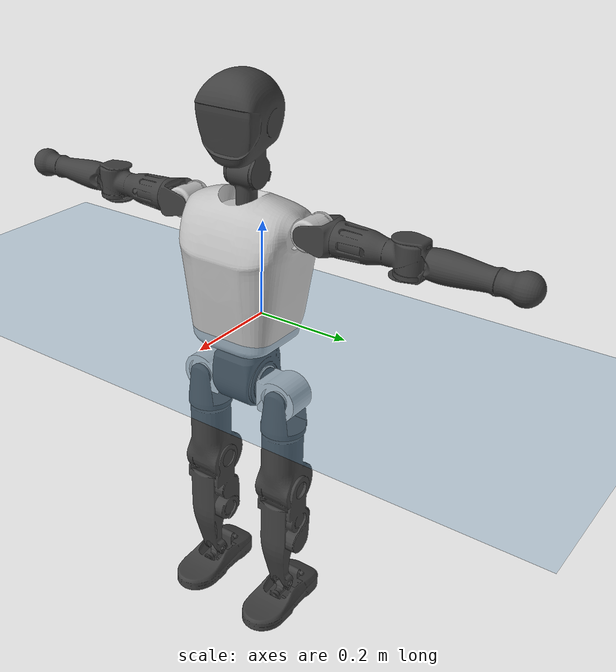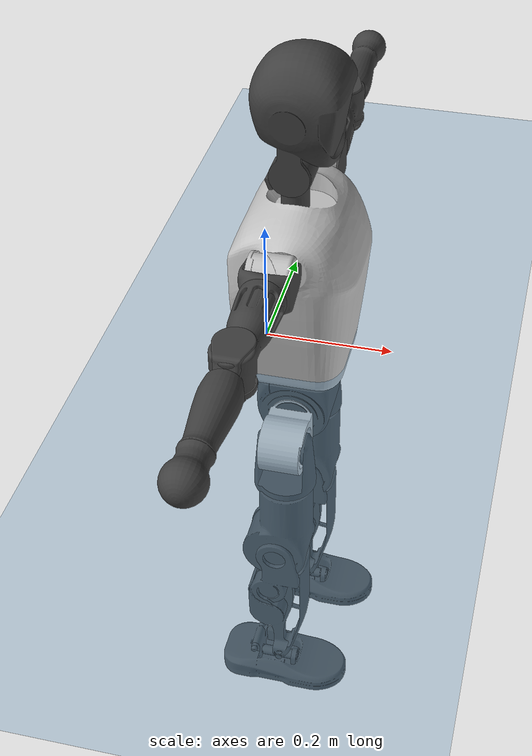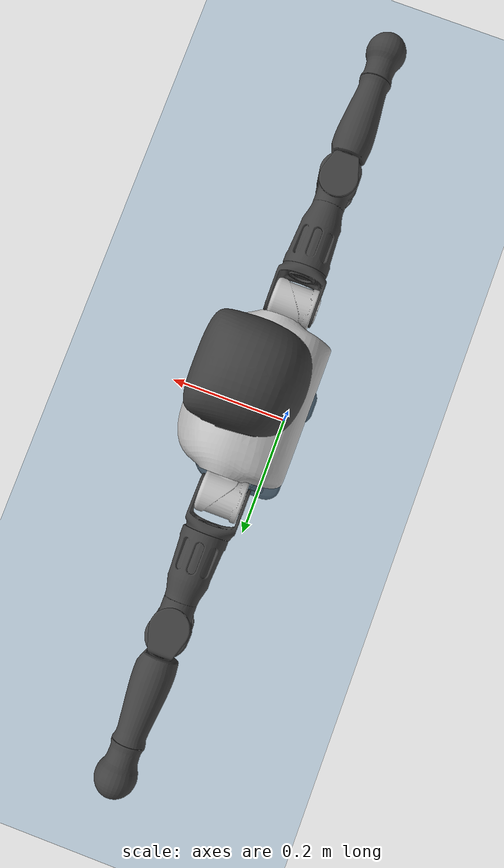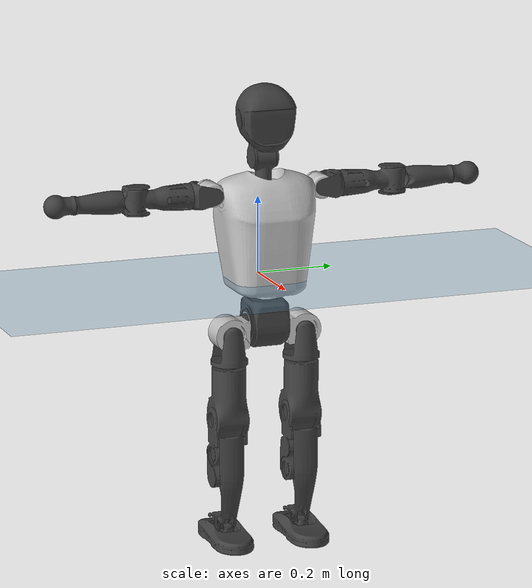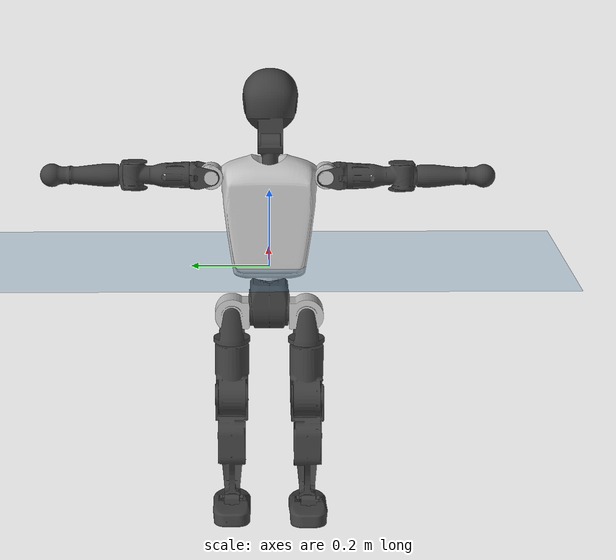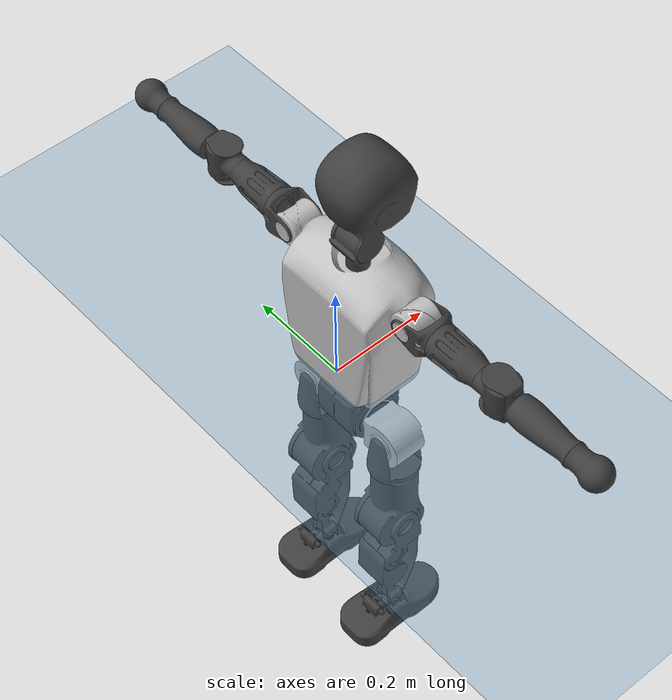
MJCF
<mujoco model="T1">
  <compiler angle="radian" assetdir="assets" balanceinertia="true" inertiafromgeom="false"/>

  <option timestep="0.005" density="1.2" viscosity="2e-05"/>

  <size nkey="1"/>

  <visual>
    <quality shadowsize="8192"/>
    <map shadowclip="0.5"/>
  </visual>

  <default>
    <default class="/">
      <joint armature="0.01" damping="0.01" frictionloss="0.1"/>
      <geom contype="0" conaffinity="0" group="1" solref="-1000 -80"/>
      <site size="0.01 0.005 0.005" group="5"/>
      <general forcelimited="true" biastype="affine" gainprm="25" biasprm="0 -25 -0.6"/>
      <default class="t1">
        <geom rgba="0.25 0.25 0.25 1"/>
        <default class="visual">
          <geom type="mesh" group="2"/>
        </default>
        <default class="collision">
          <geom group="3"/>
        </default>
        <default class="foot">
          <geom size="0.1115 0.05 0.015" type="box" condim="6" group="4" priority="1" solimp="0.015 1 0.015"/>
        </default>
        <default class="reward_collision_sphere">
          <geom group="5" rgba="1 0 0 1"/>
        </default>
      </default>
    </default>
  </default>

  <asset>
    <texture type="skybox" colorspace="auto" name="//unnamed_texture_0" builtin="gradient" rgb1="0.95 0.95 0.95" rgb2="0.95 0.95 0.95" width="100" height="600"/>
    <texture type="2d" colorspace="auto" name="texplane" builtin="checker" rgb1="0.345 0.575 0.748" rgb2="0.345 0.575 0.748" markrgb="1 1 1" width="512" height="512"/>
    <material name="MatPlane" class="/" texture="texplane" texuniform="true" texrepeat="2 2" specular="0.9"/>
    <mesh name="Trunk" class="/" file="Trunk.stl"/>
    <mesh name="H1" class="/" file="H1.stl"/>
    <mesh name="H2" class="/" file="H2.stl"/>
    <mesh name="AL1" class="/" file="AL1.stl"/>
    <mesh name="AL2" class="/" file="AL2.stl"/>
    <mesh name="AL3" class="/" file="AL3.stl"/>
    <mesh name="left_hand_link" class="/" file="left_hand_link.stl"/>
    <mesh name="AR1" class="/" file="AR1.stl"/>
    <mesh name="AR2" class="/" file="AR2.stl"/>
    <mesh name="AR3" class="/" file="AR3.stl"/>
    <mesh name="right_hand_link" class="/" file="right_hand_link.stl"/>
    <mesh name="Waist" class="/" file="Waist.stl"/>
    <mesh name="Hip_Pitch_Left" class="/" file="Hip_Pitch_Left.stl"/>
    <mesh name="Hip_Roll_Left" class="/" file="Hip_Roll_Left.stl"/>
    <mesh name="Hip_Yaw_Left" class="/" file="Hip_Yaw_Left.stl"/>
    <mesh name="Shank_Left" class="/" file="Shank_Left.stl"/>
    <mesh name="Ankle_Cross_Left" class="/" file="Ankle_Cross_Left.stl"/>
    <mesh name="left_foot_link" class="/" file="left_foot_link.stl"/>
    <mesh name="Hip_Pitch_Right" class="/" file="Hip_Pitch_Right.stl"/>
    <mesh name="Hip_Roll_Right" class="/" file="Hip_Roll_Right.stl"/>
    <mesh name="Hip_Yaw_Right" class="/" file="Hip_Yaw_Right.stl"/>
    <mesh name="Shank_Right" class="/" file="Shank_Right.stl"/>
    <mesh name="Ankle_Cross_Right" class="/" file="Ankle_Cross_Right.stl"/>
    <mesh name="right_foot_link" class="/" file="right_foot_link.stl"/>
  </asset>

  <worldbody>
    <geom name="floor" class="/" size="100 100 0.125" type="plane" group="0" material="MatPlane"/>
    <light name="toplight_shadow" class="/" pos="0 0 5" dir="0.0990148 0.0990148 -0.990148" type="directional" ambient="0.04 0.04 0.04" diffuse="0.55 0.55 0.55" specular="0.12 0.12 0.12"/>
    <light name="toplight_fill" class="/" pos="0 0 5" dir="0.0990148 0.0990148 -0.990148" type="directional" castshadow="false" ambient="0.04 0.04 0.04" diffuse="0.3 0.3 0.3" specular="0.08 0.08 0.08"/>
    <body name="trunk" childclass="t1" pos="0.000556855 -4.59595e-05 0.000101779" quat="1 -0.000227019 1.35549e-05 -5.6011e-05">
      <inertial pos="0.0438631 -0.000384956 0.10927" quat="0.999962 -0.00262223 -0.00729175 0.00405346" mass="9.39985" diaginertia="0.030775 0.0523406 0.0675193"/>
      <joint name="//unnamed_joint_0" type="free" armature="0" damping="0" frictionloss="0"/>
      <geom name="//unnamed_geom_1" class="visual" rgba="0.76 0.76 0.76 1" mesh="Trunk"/>
      <geom name="//unnamed_geom_2" class="collision" size="0.0690671 0.0920894 0.138134" pos="0.0480486 0 0.124322" type="box"/>
      <geom name="//unnamed_geom_3" class="reward_collision_sphere" size="0.105903" pos="0.0480486 0 0.103601"/>
      <geom name="//unnamed_geom_4" class="reward_collision_sphere" size="0.0138134" pos="0.0480486 0.0786979 0"/>
      <geom name="//unnamed_geom_5" class="reward_collision_sphere" size="0.0138134" pos="0.0480486 -0.0786979 0"/>
      <geom name="//unnamed_geom_6" class="reward_collision_sphere" size="0.0138134" pos="0.0480486 0.0990668 0.186482"/>
      <geom name="//unnamed_geom_7" class="reward_collision_sphere" size="0.0138134" pos="0.0480486 -0.0990668 0.186482"/>
      <site name="imu" pos="-0.0112714 0.00379101 0.00508553" size="0.00920894"/>
      <camera name="track" pos="0 -1.85172 0" quat="0.707107 0.707107 0 0" mode="trackcom"/>
      <camera name="ego_camera" pos="0.0976989 0 0.435126" quat="-0.5 -0.5 0.5 0.5"/>
      <body name="H1" pos="0.0470711 -0.00262488 0.249018" quat="1 0.000553815 7.35678e-05 0.000101891">
        <inertial pos="-0.00163304 -0.00145173 0.0600063" quat="0.765074 -0.0109803 0.0128282 0.643721" mass="0.353117" diaginertia="7.99377e-05 0.000147543 0.000179552"/>
        <joint name="AAHead_yaw" pos="0 0 0" axis="-0.00865438 -0.00688889 0.999939" range="-1.57961 1.55149" armature="0.0100123" damping="0.00891154" frictionloss="0.0914608"/>
        <geom name="//unnamed_geom_8" class="visual" mesh="H1"/>
        <body name="H2" pos="-0.00128869 -0.000153872 0.0643006" quat="1 -0.000352937 0.000208955 -0.000562004">
          <inertial pos="0.00608857 -0.00160073 0.102297" quat="0.988633 0.103432 -0.0739853 -0.0802015" mass="0.508403" diaginertia="0.000686402 0.00132241 0.00207548"/>
          <joint name="Head_pitch" pos="0 0 0" axis="0.000312616 -1 -0.000380947" range="-1.24143 0.351668" armature="0.009486" damping="0.0104903" frictionloss="0.0929729"/>
          <geom name="//unnamed_geom_9" class="visual" mesh="H2"/>
          <geom name="//unnamed_geom_10" class="collision" size="0.0736715" pos="0.00800811 0 0.113962"/>
          <geom name="//unnamed_geom_11" class="reward_collision_sphere" size="0.0828805" pos="0.0160162 0 0.103601"/>
        </body>
      </body>
      <body name="AL1" pos="0.046557 0.101457 0.227113" quat="1 -3.47571e-05 0.000537397 7.5172e-05">
        <inertial pos="-0.00293249 0.0437075 -0.00135014" quat="0.501237 0.494321 -0.506999 0.497353" mass="0.411045" diaginertia="0.000450408 0.000878127 0.000348417"/>
        <joint name="Left_Shoulder_Pitch" pos="0 0 0" axis="-0.000196729 0.999999 0.00141392" stiffness="0.00696273" range="-3.32003 1.22468" armature="0.00943856" damping="0.00517183" frictionloss="0.0886203"/>
        <geom name="//unnamed_geom_12" class="visual" rgba="0.76 0.76 0.76 1" mesh="AL1"/>
        <body name="AL2" pos="-0.000432059 0.046322 0.000562863" quat="1 5.04923e-05 -0.000314042 0.000293129">
          <inertial pos="0.00271985 0.0360624 -0.000528617" quat="0.488004 0.51169 -0.487963 0.511779" mass="0.126261" diaginertia="0.00013796 0.000248742 0.000215779"/>
          <joint name="Left_Shoulder_Roll" pos="0 0 0" axis="-0.999999 5.00804e-05 0.00163" range="-1.56088 1.70166" armature="0.00922058" damping="0.0186816" frictionloss="0.0908502"/>
          <geom name="//unnamed_geom_13" class="visual" mesh="AL2"/>
          <body name="AL3" pos="0.00299712 0.0561699 0.000795895" quat="1 -0.000146715 -0.000114554 -0.000170799">
            <inertial pos="-0.000279196 0.0781492 0.00120662" quat="0.705841 0.708335 -0.00709462 -0.000441405" mass="0.789238" diaginertia="0.00426849 0.00861406 0.000731836"/>
            <joint name="Left_Elbow_Pitch" pos="0 0 0" axis="-0.000242791 -1 -0.000135335" range="-2.28284 2.3008" armature="0.00838444" damping="0.00748657" frictionloss="0.0918987"/>
            <geom name="//unnamed_geom_14" class="visual" mesh="AL3"/>
            <geom name="//unnamed_geom_15" class="collision" size="0.0276268 0.0690671" pos="0 0.0462929 0" quat="0.707105 0.707108 0 0" type="cylinder"/>
            <geom name="//unnamed_geom_16" class="reward_collision_sphere" size="0.0331522"/>
            <body name="left_hand_link" pos="-0.000508112 0.13637 0.000145016" quat="1 5.29375e-06 -0.000206939 0.000599999">
              <inertial pos="0.00234593 0.0998807 0.000583573" quat="0.707394 0.706802 -0.00293951 -0.00405604" mass="0.25275" diaginertia="0.00266319 0.00551153 0.00024903"/>
              <joint name="Left_Elbow_Yaw" pos="0 0 0" axis="-0.00100518 -0.000480648 0.999999" range="-2.44998 -0.00264111" armature="0.00979424" damping="0.016446" frictionloss="0.0983702"/>
              <geom name="//unnamed_geom_17" class="visual" mesh="left_hand_link"/>
              <geom name="//unnamed_geom_18" class="collision" size="0.0276268 0.0805782" pos="0 0.120362 0" quat="0.707105 0.707108 0 0" type="cylinder"/>
              <geom name="//unnamed_geom_19" class="reward_collision_sphere" size="0.0460447"/>
              <geom name="//unnamed_geom_20" class="reward_collision_sphere" size="0.0322313" pos="0 0.101844 0"/>
              <geom name="//unnamed_geom_21" class="reward_collision_sphere" size="0.0322313" pos="0 0.199059 0"/>
            </body>
          </body>
        </body>
      </body>
      <body name="AR1" pos="0.0472072 -0.0994871 0.227202" quat="1 -8.00912e-05 0.000330212 3.77706e-05">
        <inertial pos="-0.00146759 -0.0427798 -0.000237631" quat="0.504259 0.495661 -0.504204 0.495804" mass="0.410809" diaginertia="0.000455203 0.000881272 0.000347088"/>
        <joint name="Right_Shoulder_Pitch" pos="0 0 0" axis="1.90336e-05 -1 4.00635e-05" stiffness="0.00848096" range="-1.2148 3.28846" armature="0.00949741" damping="0" frictionloss="0.0918441"/>
        <geom name="//unnamed_geom_22" class="visual" rgba="0.76 0.76 0.76 1" mesh="AR1"/>
        <body name="AR2" pos="0.000943396 -0.0434759 -0.00202467" quat="1 4.2576e-05 -4.26471e-05 2.57225e-05">
          <inertial pos="0.00294691 -0.0338842 -0.00199831" quat="0.510576 0.48749 -0.513691 0.487634" mass="0.125623" diaginertia="0.000132969 0.000229868 0.000210337"/>
          <joint name="Right_Shoulder_Roll" pos="0 0 0" axis="-0.999948 0.0101051 0.00158011" range="-1.69169 1.57207" armature="0.00894794" damping="0.0197631" frictionloss="0.0901282"/>
          <geom name="//unnamed_geom_23" class="visual" mesh="AR2"/>
          <body name="AR3" pos="0.00057604 -0.0558344 -0.000823463" quat="1 -9.81131e-05 -0.000160474 -0.000184363">
            <inertial pos="-0.00258609 -0.0800068 -6.06085e-05" quat="0.707869 0.706343 0.000203034 0.000954009" mass="0.795593" diaginertia="0.00426018 0.00867617 0.000761856"/>
            <joint name="Right_Elbow_Pitch" pos="0 0 0" axis="0.000445032 0.999998 -0.00188869" range="-2.27435 2.25793" armature="0.00927932" damping="0.0140889" frictionloss="0.0818984"/>
            <geom name="//unnamed_geom_24" class="visual" mesh="AR3"/>
            <geom name="//unnamed_geom_25" class="collision" size="0.0276268 0.0690671" pos="0 -0.0462929 0" quat="0.707105 0.707108 0 0" type="cylinder"/>
            <geom name="//unnamed_geom_26" class="reward_collision_sphere" size="0.0331522"/>
            <body name="right_hand_link" pos="-0.000541159 -0.135928 -0.000418863" quat="1 -2.59532e-05 -0.000238315 -0.000207689">
              <inertial pos="0.000487836 -0.100917 0.00274582" quat="0.706488 0.707725 -3.24166e-06 -0.000408566" mass="0.256232" diaginertia="0.00266208 0.00539597 0.000258637"/>
              <joint name="Right_Elbow_Yaw" pos="0 0 0" axis="-0.00127985 -0.000336568 0.999999" stiffness="0.000402892" range="0.000604151 2.4593" armature="0.00921182" damping="0.00966162" frictionloss="0.0826457"/>
              <geom name="//unnamed_geom_27" class="visual" mesh="right_hand_link"/>
              <geom name="//unnamed_geom_28" class="collision" size="0.0276268 0.0805782" pos="0 -0.120362 0" quat="0.707105 0.707108 0 0" type="cylinder"/>
              <geom name="//unnamed_geom_29" class="reward_collision_sphere" size="0.0460447"/>
              <geom name="//unnamed_geom_30" class="reward_collision_sphere" size="0.0322313" pos="0 -0.101844 0"/>
              <geom name="//unnamed_geom_31" class="reward_collision_sphere" size="0.0322313" pos="0 -0.199059 0"/>
            </body>
          </body>
        </body>
      </body>
      <body name="Waist" pos="0.0508451 8.91001e-05 -0.120541" quat="1 -0.000423238 7.79106e-05 -6.3886e-05">
        <inertial pos="0.00108211 -0.000495897 0.00728616" quat="0.983656 0.000449088 -0.180037 0.002656" mass="1.98599" diaginertia="0.00181539 0.00355766 0.00581377"/>
        <joint name="Waist" pos="0 0 0" axis="-0.00242342 -0.00674921 0.999974" range="-1.57508 1.5686" armature="0.00906835" damping="0.00887704" frictionloss="0.0827823"/>
        <geom name="//unnamed_geom_32" class="visual" mesh="Waist"/>
        <body name="Hip_Pitch_Left" pos="0.00165565 0.097251 0.000836235" quat="1 0.000653078 -0.000578772 -0.000113024">
          <inertial pos="0.000354312 -0.00855429 -0.0198023" quat="0.975442 0.219672 0.0158646 0.00212361" mass="0.793057" diaginertia="0.00058932 0.00100317 0.00152544"/>
          <joint name="Left_Hip_Pitch" pos="0 0 0" axis="-0.000332429 0.999998 -0.0017453" stiffness="3.88599e-05" range="-1.78084 1.57003" armature="0.00951639" damping="0.0184628" frictionloss="0.0924392"/>
          <geom name="//unnamed_geom_33" class="visual" rgba="0.76 0.76 0.76 1" mesh="Hip_Pitch_Left"/>
          <body name="Hip_Roll_Left" pos="0.00234728 0.000427407 -0.0208816" quat="0.999999 -0.00123017 0.000202361 0.00019256">
            <inertial pos="0.00172033 0.000855162 -0.0558637" quat="0.707418 -0.00479568 -0.00718573 0.706743" mass="0.286504" diaginertia="0.000539956 0.00100449 0.000593866"/>
            <joint name="Left_Hip_Roll" pos="0 0 0" axis="-0.99994 0.00226361 -0.0107053" range="-1.52243 0.196315" armature="0.00919117" damping="0.00583488" frictionloss="0.0959503"/>
            <geom name="//unnamed_geom_34" class="visual" mesh="Hip_Roll_Left"/>
            <geom name="//unnamed_geom_35" class="reward_collision_sphere" size="0.0506492"/>
            <body name="Hip_Yaw_Left" pos="0.000909996 -4.21809e-05 -0.0856988" quat="0.999999 0.000107483 0.000503809 0.00092462">
              <inertial pos="-0.00760592 0.00093572 -0.0915672" quat="0.698556 -0.0329797 -0.0276747 0.714259" mass="1.69199" diaginertia="0.00874892 0.0173404 0.00312823"/>
              <joint name="Left_Hip_Yaw" pos="0 0 0" axis="-0.00144264 0.000923338 -0.999999" range="-0.957619 1.04507" armature="0.00912421" damping="0.00830645" frictionloss="0.0991836"/>
              <geom name="//unnamed_geom_36" class="visual" mesh="Hip_Yaw_Left"/>
              <geom name="//unnamed_geom_37" class="collision" size="0.0460447 0.0736715" type="cylinder"/>
              <body name="Shank_Left" pos="-0.0110649 0.00155379 -0.138469" quat="1 -2.80965e-05 7.23108e-05 2.40077e-05">
                <inertial pos="-0.00715947 -0.000222657 -0.129906" quat="0.996716 0.00487913 -0.0303574 0.0749177" mass="1.3508" diaginertia="0.0114529 0.0242882 0.00224206"/>
                <joint name="Left_Knee_Pitch" pos="0 0 0" axis="-0.00179113 0.999985 -0.00513984" range="-0.00593034 2.36339" armature="0.00880487" damping="0.00806416" frictionloss="0.102661"/>
                <geom name="//unnamed_geom_38" class="visual" mesh="Shank_Left"/>
                <geom name="//unnamed_geom_39" class="collision" size="0.0460447 0.0690671" pos="0 0 -0.124322" type="cylinder"/>
                <geom name="//unnamed_geom_40" class="reward_collision_sphere" size="0.0598581"/>
                <body name="Ankle_Cross_Left" pos="0.00246436 0.00053438 -0.291297" quat="1 -3.01262e-05 -1.00999e-05 6.82747e-05">
                  <inertial pos="-0.00303957 -0.000479866 -0.0086321" quat="0.443614 0.550022 0.550778 0.444214" mass="0.0568537" diaginertia="9.46916e-06 1.74663e-05 1.3404e-05"/>
                  <joint name="Left_Ankle_Pitch" pos="0 0 0" axis="-0.0011741 0.999991 -0.00405074" range="-0.874169 0.335143" armature="0.0102962" damping="0.0152123" frictionloss="0.0949165"/>
                  <geom name="//unnamed_geom_41" class="visual" mesh="Ankle_Cross_Left"/>
                  <body name="left_foot_link" pos="0.00172522 0.000661203 -0.0120709" quat="1 2.83954e-05 -2.44767e-05 -2.74818e-05">
                    <inertial pos="-0.00234324 0.000833461 -0.00935733" quat="-0.000157707 0.620914 0.000106545 0.783879" mass="0.540792" diaginertia="0.0008886 0.00161088 0.00256453"/>
                    <joint name="Left_Ankle_Roll" pos="0 0 0" axis="-0.999996 -0.00267602 -0.00046347" range="-0.442406 0.449229" armature="0.0091672" damping="6.5962e-05" frictionloss="0.092668"/>
                    <geom name="//unnamed_geom_42" class="visual" mesh="left_foot_link"/>
                    <geom name="left_foot" class="foot" size="0.101248 0.0444666 0.0143615" pos="0.00800811 0 -0.0155402"/>
                    <geom name="//unnamed_geom_44" class="reward_collision_sphere" size="0.0478865" pos="0.00800811 0 -0.0155402"/>
                    <geom name="//unnamed_geom_45" class="reward_collision_sphere" size="0.0276268" pos="0.076077 -0.0212947 -0.0155402"/>
                    <geom name="//unnamed_geom_46" class="reward_collision_sphere" size="0.0276268" pos="-0.0560568 -0.0212947 -0.0155402"/>
                    <site name="left_foot" class="foot" pos="0.00800811 0 -0.0155402" size="0.00920894"/>
                  </body>
                </body>
              </body>
            </body>
          </body>
        </body>
        <body name="Hip_Pitch_Right" pos="-5.29066e-05 -0.0976856 -0.000184966" quat="1 -0.000230841 0.000111893 -2.66463e-05">
          <inertial pos="0.000443671 0.00710312 -0.0202897" quat="0.974512 -0.223956 0.012355 -0.0042191" mass="0.79939" diaginertia="0.000577444 0.00102217 0.0014813"/>
          <joint name="Right_Hip_Pitch" pos="0 0 0" axis="0.00399426 -0.999988 -0.00278321" range="-1.62132 1.84675" armature="0.00936543" damping="0.0161396" frictionloss="0.0819906"/>
          <geom name="//unnamed_geom_47" class="visual" rgba="0.76 0.76 0.76 1" mesh="Hip_Pitch_Right"/>
          <body name="Hip_Roll_Right" pos="0.00245175 0.000369352 -0.0215505" quat="1 0.000102454 0.00027495 -0.000261221">
            <inertial pos="0.00202232 -0.00160648 -0.0542071" quat="0.704822 -0.00934055 -0.0083532 0.709274" mass="0.295389" diaginertia="0.000563185 0.00102443 0.000619047"/>
            <joint name="Right_Hip_Roll" pos="0 0 0" axis="-0.999901 -0.00433269 -0.0133571" stiffness="0.00293245" range="-0.203205 1.59037" armature="0.00900504" damping="0.00806294" frictionloss="0.0892551"/>
            <geom name="//unnamed_geom_48" class="visual" mesh="Hip_Roll_Right"/>
            <geom name="//unnamed_geom_49" class="reward_collision_sphere" size="0.0506492"/>
            <body name="Hip_Yaw_Right" pos="-0.00105594 -0.000874693 -0.0867799" quat="1 8.50659e-05 -3.41669e-05 8.12277e-05">
              <inertial pos="-0.0054963 0.00161213 -0.0928261" quat="0.70819 -0.0377821 -0.0402063 0.703863" mass="1.69741" diaginertia="0.00855807 0.0173848 0.00312571"/>
              <joint name="Right_Hip_Yaw" pos="0 0 0" axis="-0.00128127 -0.00117854 -0.999998" stiffness="0.000920167" range="-0.983789 0.985269" armature="0.00948887" damping="0.0151459" frictionloss="0.0922173"/>
              <geom name="//unnamed_geom_50" class="visual" mesh="Hip_Yaw_Right"/>
              <geom name="//unnamed_geom_51" class="collision" size="0.0460447 0.0736715" type="cylinder"/>
              <body name="Shank_Right" pos="-0.0111423 -0.0026354 -0.137996" quat="1 -9.00147e-05 7.58059e-05 -9.73477e-05">
                <inertial pos="-0.00716432 0.00218053 -0.126696" quat="0.999372 -0.0023446 -0.0260109 -0.0239308" mass="1.41976" diaginertia="0.011305 0.0234035 0.00235172"/>
                <joint name="Right_Knee_Pitch" pos="0 0 0" axis="0.000615223 -0.999995 -0.00301802" range="-2.3388 0.00280117" armature="0.00922662" damping="0.00136622" frictionloss="0.0948906"/>
                <geom name="//unnamed_geom_52" class="visual" mesh="Shank_Right"/>
                <geom name="//unnamed_geom_53" class="collision" size="0.0460447 0.0690671" pos="0 0 -0.124322" type="cylinder"/>
                <geom name="//unnamed_geom_54" class="reward_collision_sphere" size="0.0598581"/>
                <body name="Ankle_Cross_Right" pos="-0.00103927 -0.000879016 -0.290659" quat="1 -6.55095e-05 0.000190608 0.000150282">
                  <inertial pos="-0.00200301 -0.00134138 -0.00926294" quat="0.450782 0.554071 0.543386 0.441059" mass="0.0572499" diaginertia="9.57653e-06 1.65182e-05 1.31515e-05"/>
                  <joint name="Right_Ankle_Pitch" pos="0 0 0" axis="0.00246564 -0.999992 -0.00328841" range="-0.359068 0.869536" armature="0.00952205" damping="0" frictionloss="0.0909986"/>
                  <geom name="//unnamed_geom_55" class="visual" mesh="Ankle_Cross_Right"/>
                  <body name="right_foot_link" pos="-0.00135487 -0.00123138 -0.0102476" quat="1 7.54742e-06 5.59113e-06 -4.02747e-06">
                    <inertial pos="0.000764505 -0.000771165 -0.00750238" quat="0.00053156 0.620204 -0.000584367 0.78444" mass="0.540501" diaginertia="0.000909594 0.00160389 0.00259884"/>
                    <joint name="Right_Ankle_Roll" pos="0 0 0" axis="-0.999998 -0.00139681 -0.00145881" range="-0.445632 0.430663" armature="0.00924762" damping="0.00959539" frictionloss="0.0893007"/>
                    <geom name="//unnamed_geom_56" class="visual" mesh="right_foot_link"/>
                    <geom name="right_foot" class="foot" size="0.100086 0.0432637 0.013588" pos="0.00800811 0 -0.0155402"/>
                    <geom name="//unnamed_geom_58" class="reward_collision_sphere" size="0.0368358"/>
                    <geom name="//unnamed_geom_59" class="reward_collision_sphere" size="0.0276268" pos="0.00800811 0 -0.0155402"/>
                    <geom name="//unnamed_geom_60" class="reward_collision_sphere" size="0.0276268" pos="0.076077 0.0212947 -0.0155402"/>
                    <geom name="//unnamed_geom_61" class="reward_collision_sphere" size="0.0276268" pos="-0.0560568 0.0212947 -0.0155402"/>
                    <site name="right_foot" class="foot" pos="0.00800811 0 -0.0155402" size="0.00920894"/>
                  </body>
                </body>
              </body>
            </body>
          </body>
        </body>
      </body>
    </body>
  </worldbody>

  <contact>
    <pair class="/" geom1="floor" geom2="left_foot" name="//unnamed_contact_0"/>
    <pair class="/" geom1="floor" geom2="right_foot" name="//unnamed_contact_1"/>
  </contact>

  <actuator>
    <general name="AAHead_yaw" class="/" joint="AAHead_yaw" forcerange="-6.64378 6.64378" gainprm="22.1321" biasprm="0 -22.1321 -0.521362"/>
    <general name="Head_pitch" class="/" joint="Head_pitch" forcerange="-6.29984 6.29984" gainprm="22.1321" biasprm="0 -22.1321 -0.521362"/>
    <general name="Left_Shoulder_Pitch" class="/" joint="Left_Shoulder_Pitch" forcerange="-16.7857 16.7857" gainprm="22.1321" biasprm="0 -22.1321 -0.521362"/>
    <general name="Left_Shoulder_Roll" class="/" joint="Left_Shoulder_Roll" forcerange="-16.2205 16.2205" gainprm="22.1321" biasprm="0 -22.1321 -0.521362"/>
    <general name="Left_Elbow_Pitch" class="/" joint="Left_Elbow_Pitch" forcerange="-17.3016 17.3016" gainprm="22.1321" biasprm="0 -22.1321 -0.521362"/>
    <general name="Left_Elbow_Yaw" class="/" joint="Left_Elbow_Yaw" forcerange="-16.7114 16.7114" gainprm="22.1321" biasprm="0 -22.1321 -0.521362"/>
    <general name="Right_Shoulder_Pitch" class="/" joint="Right_Shoulder_Pitch" forcerange="-17.144 17.144" gainprm="22.1321" biasprm="0 -22.1321 -0.521362"/>
    <general name="Right_Shoulder_Roll" class="/" joint="Right_Shoulder_Roll" forcerange="-17.1112 17.1112" gainprm="22.1321" biasprm="0 -22.1321 -0.521362"/>
    <general name="Right_Elbow_Pitch" class="/" joint="Right_Elbow_Pitch" forcerange="-16.7762 16.7762" gainprm="22.1321" biasprm="0 -22.1321 -0.521362"/>
    <general name="Right_Elbow_Yaw" class="/" joint="Right_Elbow_Yaw" forcerange="-15.966 15.966" gainprm="22.1321" biasprm="0 -22.1321 -0.521362"/>
    <general name="Waist" class="/" joint="Waist" forcerange="-28.0054 28.0054" gainprm="22.1321" biasprm="0 -22.1321 -0.521362"/>
    <general name="Left_Hip_Pitch" class="/" joint="Left_Hip_Pitch" forcerange="-41.524 41.524" gainprm="22.1321" biasprm="0 -22.1321 -0.521362"/>
    <general name="Left_Hip_Roll" class="/" joint="Left_Hip_Roll" forcerange="-27.1573 27.1573" gainprm="22.1321" biasprm="0 -22.1321 -0.521362"/>
    <general name="Left_Hip_Yaw" class="/" joint="Left_Hip_Yaw" forcerange="-26.5278 26.5278" gainprm="22.1321" biasprm="0 -22.1321 -0.521362"/>
    <general name="Left_Knee_Pitch" class="/" joint="Left_Knee_Pitch" forcerange="-53.6319 53.6319" gainprm="22.1321" biasprm="0 -22.1321 -0.521362"/>
    <general name="Left_Ankle_Pitch" class="/" joint="Left_Ankle_Pitch" forcerange="-18.6089 18.6089" gainprm="22.1321" biasprm="0 -22.1321 -0.521362"/>
    <general name="Left_Ankle_Roll" class="/" joint="Left_Ankle_Roll" forcerange="-13.5885 13.5885" gainprm="22.1321" biasprm="0 -22.1321 -0.521362"/>
    <general name="Right_Hip_Pitch" class="/" joint="Right_Hip_Pitch" forcerange="-40.5418 40.5418" gainprm="22.1321" biasprm="0 -22.1321 -0.521362"/>
    <general name="Right_Hip_Roll" class="/" joint="Right_Hip_Roll" forcerange="-27.8475 27.8475" gainprm="22.1321" biasprm="0 -22.1321 -0.521362"/>
    <general name="Right_Hip_Yaw" class="/" joint="Right_Hip_Yaw" forcerange="-28.7088 28.7088" gainprm="22.1321" biasprm="0 -22.1321 -0.521362"/>
    <general name="Right_Knee_Pitch" class="/" joint="Right_Knee_Pitch" forcerange="-52.5371 52.5371" gainprm="22.1321" biasprm="0 -22.1321 -0.521362"/>
    <general name="Right_Ankle_Pitch" class="/" joint="Right_Ankle_Pitch" forcerange="-17.1436 17.1436" gainprm="22.1321" biasprm="0 -22.1321 -0.521362"/>
    <general name="Right_Ankle_Roll" class="/" joint="Right_Ankle_Roll" forcerange="-13.2787 13.2787" gainprm="22.1321" biasprm="0 -22.1321 -0.521362"/>
  </actuator>

  <sensor>
    <gyro site="imu" name="imu_angular_velocity"/>
    <velocimeter site="imu" name="imu_linear_velocity"/>
    <framelinvel objtype="site" objname="left_foot" name="left_foot_global_linear_velocity"/>
    <framelinvel objtype="site" objname="right_foot" name="right_foot_global_linear_velocity"/>
  </sensor>

  <keyframe>
    <key name="home" qpos="0 0 0.6385 1 0 0 0 0 0 0 1.4 0 -0.4 0 -1.4 0 0.4 0 -0.4 0 0 0.8 -0.4 0 0.4 0 0 -0.8 0.4 0"/>
  </keyframe>
</mujoco>
